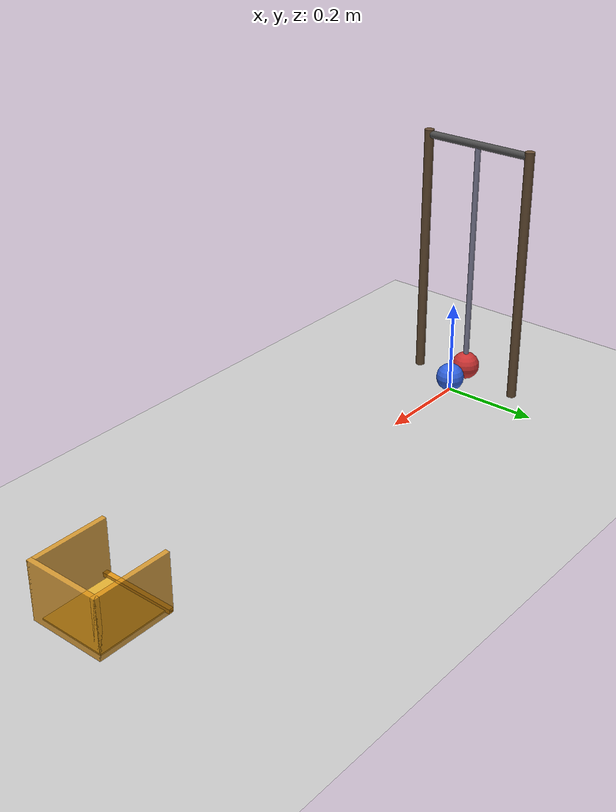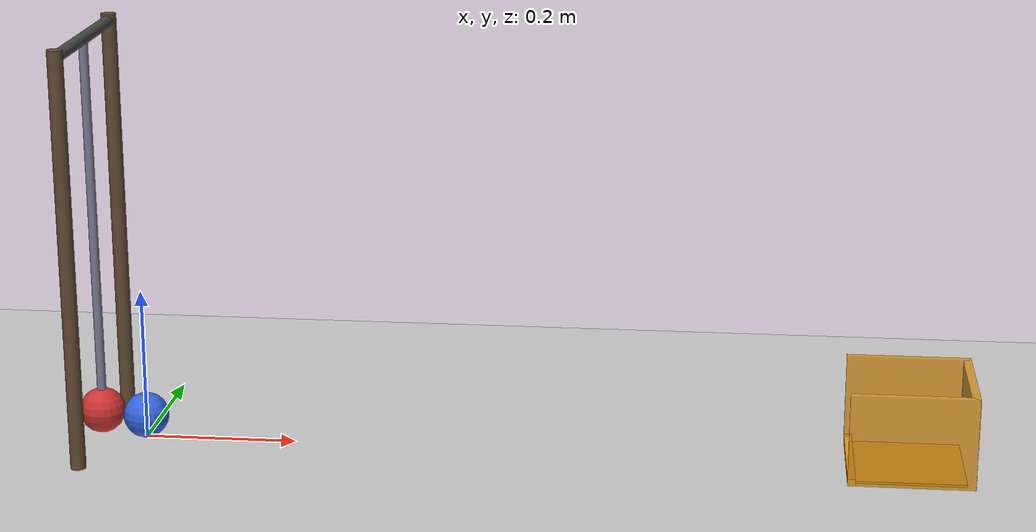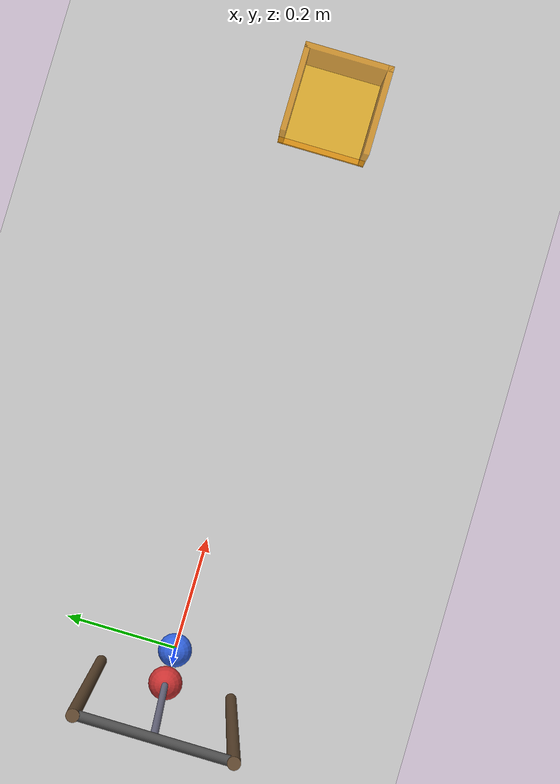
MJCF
<mujoco model="pendulum_ball_cup">
  <option timestep="0.002"/>
  <visual>
    <global offwidth="1280" offheight="720"/>
  </visual>
  <worldbody>
    <light name="sun" pos="0.5 -1 2" dir="0 0.5 -1" directional="true"/>
    <geom name="floor" type="plane" pos="0 0 0" size="3 3 0.1" rgba="0.8 0.8 0.8 1"/>

    <!-- visual-only stand holding the pendulum axle -->
    <geom name="stand_post_left" type="cylinder" fromto="-0.059 -0.12 0 -0.059 -0.12 0.545" size="0.01" contype="0" conaffinity="0" rgba="0.4 0.3 0.2 1"/>
    <geom name="stand_post_right" type="cylinder" fromto="-0.059 0.12 0 -0.059 0.12 0.545" size="0.01" contype="0" conaffinity="0" rgba="0.4 0.3 0.2 1"/>
    <geom name="stand_axle" type="cylinder" fromto="-0.059 -0.12 0.535 -0.059 0.12 0.535" size="0.008" contype="0" conaffinity="0" rgba="0.3 0.3 0.3 1"/>

    <!-- pendulum: pivot at z=0.535, bob centre hangs at z=0.035 just behind the ball -->
    <body name="pendulum" pos="-0.059 0 0.535">
      <joint name="pendulum_hinge" type="hinge" axis="0 1 0" pos="0 0 0"/>
      <geom name="pendulum_rod" type="capsule" fromto="0 0 0 0 0 -0.47" size="0.006" mass="0.05" rgba="0.5 0.5 0.6 1"/>
      <geom name="pendulum_bob" type="sphere" pos="0 0 -0.5" size="0.03" mass="0.5" rgba="0.8 0.2 0.2 1"/>
    </body>

    <!-- ball resting on the floor at the origin -->
    <body name="ball" pos="0 0 0.03">
      <freejoint name="ball_free"/>
      <geom name="ball" type="sphere" size="0.03" mass="0.1" rgba="0.2 0.4 0.9 1"/>
    </body>

    <!-- cup centred at x = 1 m: thin base, low front lip, tall side and back walls -->
    <body name="cup" pos="1 0 0">
      <geom name="cup_base" type="box" pos="0 0 0.0015" size="0.07 0.07 0.0015" rgba="0.9 0.7 0.2 1"/>
      <geom name="cup_lip" type="box" pos="-0.075 0 0.0045" size="0.005 0.08 0.0045" rgba="0.9 0.6 0.1 1"/>
      <geom name="cup_back" type="box" pos="0.075 0 0.06" size="0.005 0.08 0.06" rgba="0.9 0.6 0.1 0.8"/>
      <geom name="cup_side_left" type="box" pos="0 -0.075 0.06" size="0.08 0.005 0.06" rgba="0.9 0.6 0.1 0.8"/>
      <geom name="cup_side_right" type="box" pos="0 0.075 0.06" size="0.08 0.005 0.06" rgba="0.9 0.6 0.1 0.8"/>
    </body>
  </worldbody>

  <keyframe>
    <key name="start" qpos="0.785 0 0 0.03 1 0 0 0" qvel="0 0 0 0 0 0 0"/>
  </keyframe>
</mujoco>
